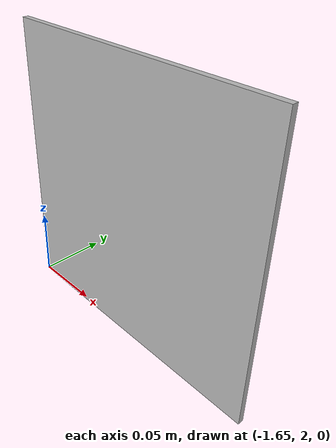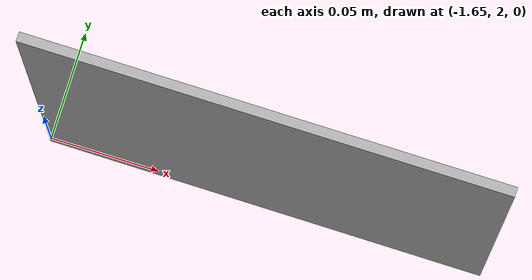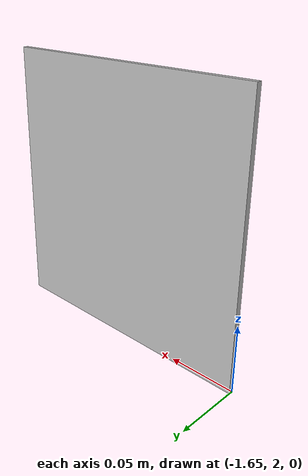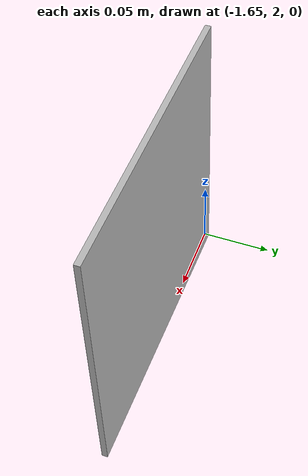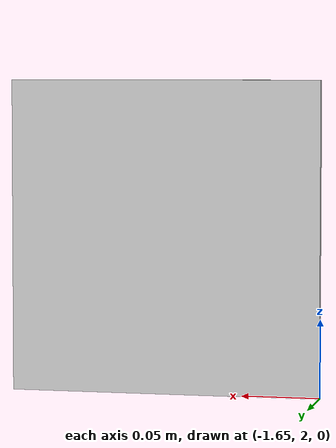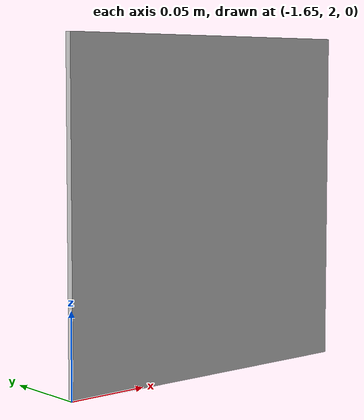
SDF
<?xml version="1.0" ?><sdf version="1.6">
  <model name="qr_template">
    <static>true</static>
    <link name="link">
      <visual name="visual">
        <geometry>
          <mesh>
            <uri>model://qr_template/meshes/qr_template.dae</uri>
          <scale>0.4 0.4 0.4</scale></mesh>
        </geometry>
      </visual>
    </link>
    <pose>-1.55 2 0 0 -0 -1.58</pose>
  </model>
</sdf>
